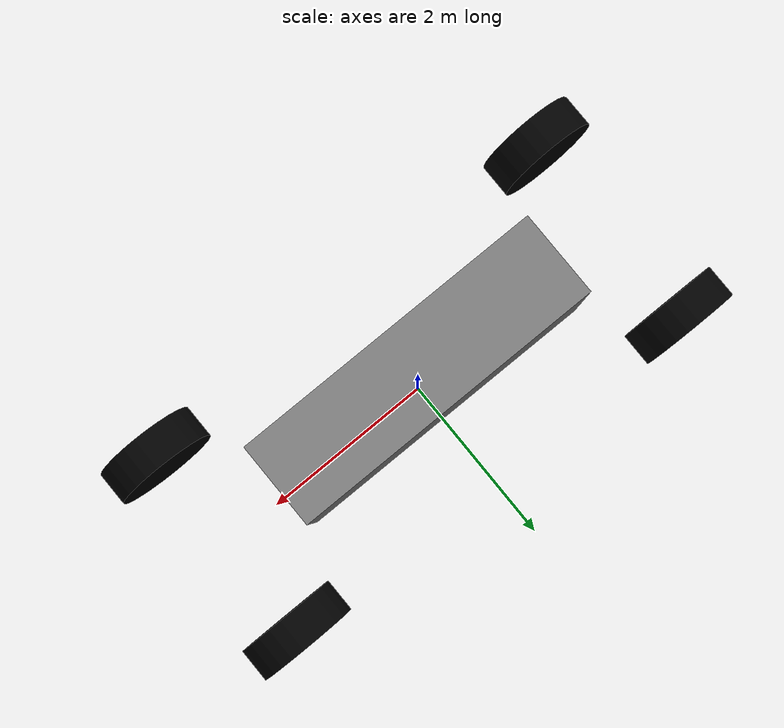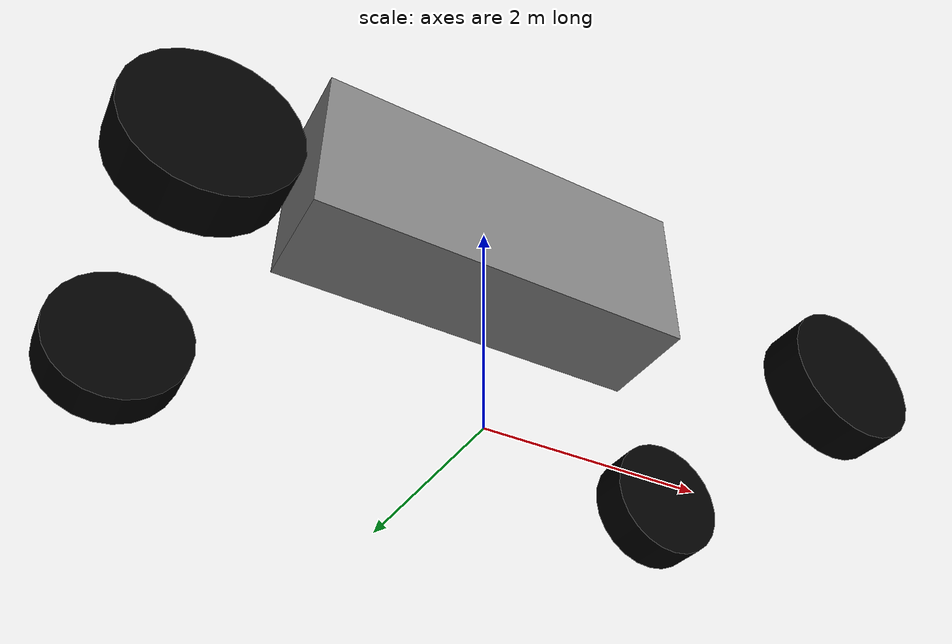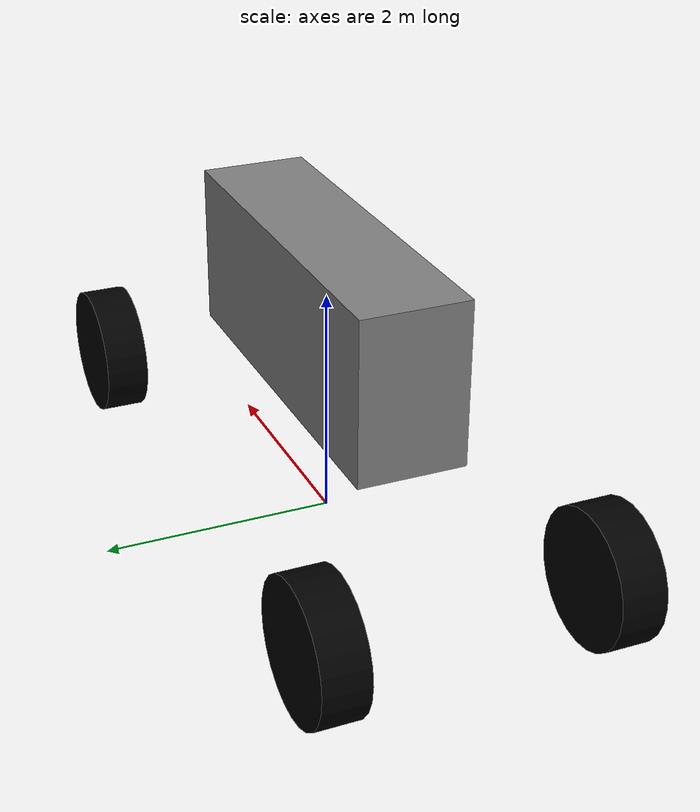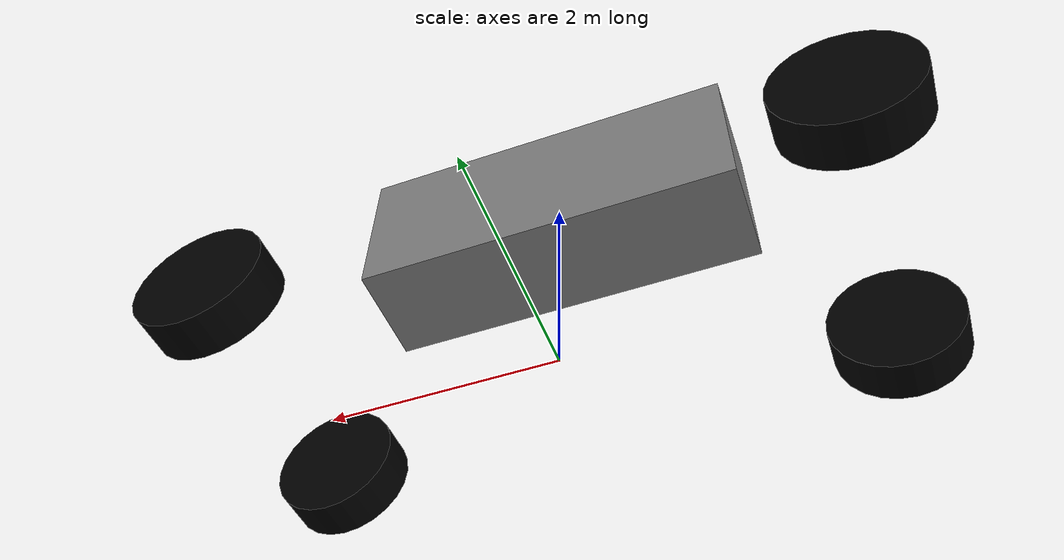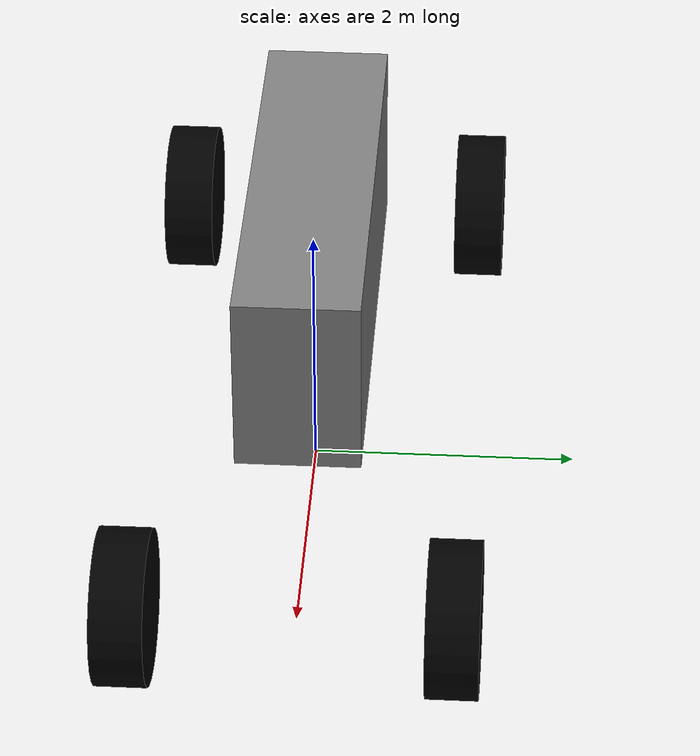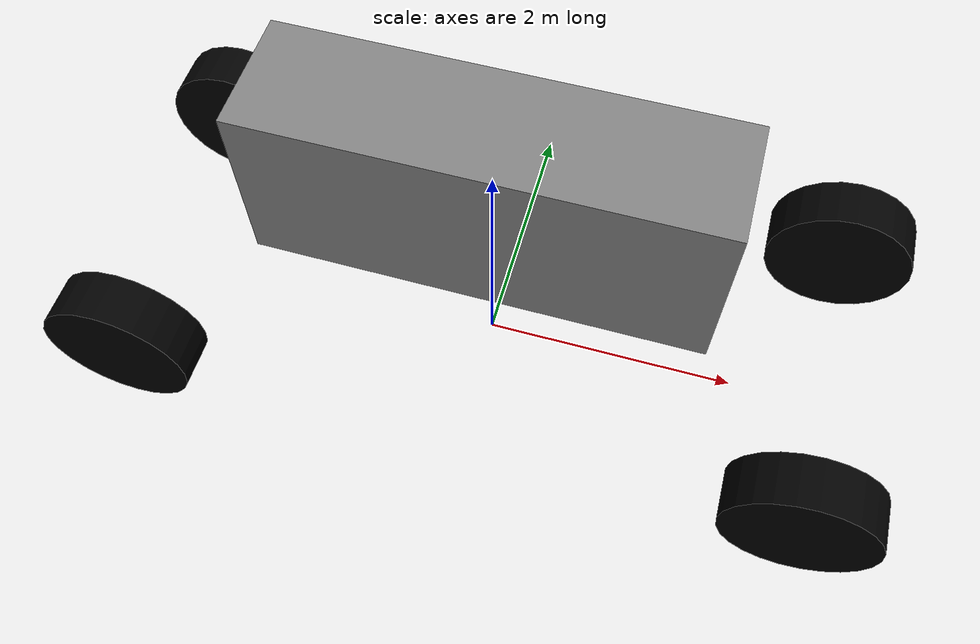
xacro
<?xml version="1.0"?>

<robot name="barebones" xmlns:xacro="http://www.ros.org/wiki/xacro">

  <!-- - - - - - - - - - - conventions - - - - - - - - - - -->

  <!-- width goes left to right (y-axis) -->
  <!-- length is front to back (x-axis) -->
  <!-- height is up down (z-axis) -->

  <!-- reflection convention -->
  <!--
  front +1
  back  -1
  left  +1
  right -1
  -->

  <!-- - - - - - - - - - dimensions, mass, and parameters - - - - - - - - - -->

  <xacro:property name="chassis_length" value="3.38"/>
  <xacro:property name="chassis_width" value="0.92"/>
  <xacro:property name="chassis_height" value="1.4"/>
  <xacro:property name="chassis_mass" value="4"/>

  <!-- tire interia is a hollow cylinder, hence hub_dia -->
  <xacro:property name="tire_dia" value="${0.575*2}"/>
  <xacro:property name="hub_dia" value="${tire_dia/1.5}"/>
  <xacro:property name="tire_width" value="${tire_dia/3.0}"/>
  <xacro:property name="wheel_mass" value="1"/>

  <!-- tire left/right and front/rear separation -->
  <xacro:property name="tire_lr_separation" value="2.36"/>
  <xacro:property name="tire_fr_separation" value="5.216"/>
  <xacro:property name="tire_z_offset" value="${chassis_height/2+0.614}"/>

  <!-- tire parameters -->
  <xacro:property name="tire_effort" value="10000000"/>
  <xacro:property name="tire_velocity" value="10000000"/>
  <xacro:property name="tire_mu1" value="0.9"/>
  <xacro:property name="tire_mu2" value="0.9"/>
  <xacro:property name="tire_kp" value="${1e9}"/>
  <xacro:property name="tire_kd" value="${5e6}"/>

  <!-- steeriing parameters -->
  <xacro:property name="steeriing_effort" value="10000000"/>
  <xacro:property name="steeriing_lower" value="${-pi/4}"/>
  <xacro:property name="steeriing_upper" value="${pi/4}"/>
  <xacro:property name="steeriing_velocity" value="10000000"/>

  <!-- - - - - - - - - - - Inertia Macros - - - - - - - - - - -->

  <!-- Null -->
  <xacro:macro name="null_inertial">
    <inertial>
      <mass value="0.001"/>
      <inertia ixx="0.00001" ixy="0" ixz="0" iyy="0.00001" iyz="0" izz="0.00001"/>
    </inertial>
  </xacro:macro>

  <!-- solid cuboid -->
  <xacro:macro name="solid_cuboid_inertial"
               params="width depth height mass *origin">
    <inertial>
      <xacro:insert_block name="origin"/>
      <mass value="${mass}"/>
      <inertia ixx="${mass * (depth * depth + height * height) / 12}"
               ixy="0" ixz="0"
               iyy="${mass * (width * width + height * height) / 12}"
               iyz="0"
               izz="${mass * (width * width + depth * depth) / 12}"/>
    </inertial>
  </xacro:macro>

  <!-- thick-walled cylindrical tube with open ends -->
  <xacro:macro name="thick_walled_tube_inertial"
               params="inner_rad outer_rad height mass">
    <inertial>
      <mass value="${mass}"/>
      <inertia ixx="${(1 / 12) * mass * (3 * (inner_rad * inner_rad +
                    outer_rad * outer_rad) + height * height)}"
               ixy="0" ixz="0"
               iyy="${(1 / 12) * mass * (3 * (inner_rad * inner_rad +
                    outer_rad * outer_rad) + height * height)}"
               iyz="0"
               izz="${mass * (inner_rad * inner_rad +
                    outer_rad * outer_rad) / 2}"/>
    </inertial>
  </xacro:macro>

  <!-- - - - - - - - - - - colors - - - - - - - - - - -->

  <material name="chassis_mat">
    <color rgba="0.5 0.5 0.5 1"/>
  </material>

  <material name="tire_mat">
    <color rgba="0 0 0 1"/>
  </material>

  <!-- - - - - - - - - - - base_link - - - - - - - - - - -->

  <link name="base_link"/>

  <!-- chassis -->
  <link name="chassis">
    <visual>
      <origin xyz="0 0 0"/>
      <geometry>
        <box size="${chassis_length} ${chassis_width} ${chassis_height}"/>
      </geometry>
      <material name="chassis_mat"/>
    </visual>
    <collision>
      <origin xyz="0 0 0"/>
      <geometry>
        <box size="${chassis_length} ${chassis_width} ${chassis_height}"/>
      </geometry>
    </collision>
    <xacro:solid_cuboid_inertial
        width="${chassis_length}" depth="${chassis_width}"
        height="${chassis_height}" mass="${chassis_mass}">
      <origin xyz="0 0 0"/>
    </xacro:solid_cuboid_inertial>
  </link>
  <joint name="base_link_to_chasis" type="fixed">
    <parent link="base_link"/>
    <child link="chassis"/>
    <origin xyz="0 0 ${tire_dia/2+tire_z_offset}"/>
  </joint>
  <gazebo reference="chassis">
    <material>Gazebo/White</material>
  </gazebo>

  <!-- FRONT -->

  <!-- axel_carrier -->
  <!-- left -->
  <xacro:macro name="front_axle_carrier" params="lr_prefix lr_reflect">
    <link name="${lr_prefix}_front_axle_carrier">
        <xacro:null_inertial/>
    </link>
    <joint name="${lr_prefix}_steering_joint" type="revolute">
        <parent link="chassis"/>
        <child link="${lr_prefix}_front_axle_carrier"/>
        <origin xyz="${tire_fr_separation/2} ${lr_reflect*tire_lr_separation/2} ${-tire_z_offset}"/>
        <axis xyz="0 0 1"/>
        <limit effort="${steeriing_effort}" lower="${steeriing_lower}" upper="${steeriing_upper}" velocity="${steeriing_velocity}"/>
    </joint>
    <transmission name="${lr_prefix}_steering_trans">
        <type>transmission_interface/SimpleTransmission</type>
        <joint name="${lr_prefix}_steering_joint">
        <hardwareInterface>hardware_interface/EffortJointInterface</hardwareInterface>
        </joint>
        <actuator name="${lr_prefix}_steering_act">
        <mechanicalReduction>1</mechanicalReduction>
        </actuator>
    </transmission>
  </xacro:macro>
  <xacro:front_axle_carrier lr_prefix="left" lr_reflect="1"/>
  <xacro:front_axle_carrier lr_prefix="right" lr_reflect="-1"/>

  <!-- wheel -->
  <xacro:macro name="front_wheel" params="lr_prefix lr_reflect">
    <link name="${lr_prefix}_front_wheel">
      <visual>
        <origin xyz="0 0 0"/>
        <geometry>
        <cylinder length="${tire_width}" radius="${tire_dia/2}"/>
        </geometry>
        <material name="tire_mat"/>
      </visual>
      <collision>
        <origin xyz="0 0 0"/>
        <geometry>
        <cylinder length="${tire_width}" radius="${tire_dia/2}"/>
        </geometry>
      </collision>
      <xacro:thick_walled_tube_inertial
        inner_rad="${hub_dia/2}" outer_rad="${tire_dia/2}"
        height="${tire_width}" mass="${wheel_mass}"/>
    </link>
    <joint name="${lr_prefix}_front_axle" type="continuous">
        <parent link="${lr_prefix}_front_axle_carrier"/>
        <child link="${lr_prefix}_front_wheel"/>
        <origin rpy="${pi/2} 0 0"/>
        <axis xyz="0 0 -1"/>
        <limit effort="${tire_effort}" velocity="${tire_velocity}"/>
    </joint>
    <transmission name="${lr_prefix}_front_axle_trans">
        <type>transmission_interface/SimpleTransmission</type>
        <joint name="${lr_prefix}_front_axle">
        <hardwareInterface>hardware_interface/EffortJointInterface</hardwareInterface>
        </joint>
        <actuator name="${lr_prefix}_front_axle_act">
        <mechanicalReduction>1</mechanicalReduction>
        </actuator>
    </transmission>
    <gazebo reference="${lr_prefix}_front_wheel">
        <mu1 value="${tire_mu1}"/>
        <mu2 value="${tire_mu2}"/>
        <kp value="${tire_kp}"/>
        <kd value="${tire_kd}"/>
        <material>Gazebo/Black</material>
    </gazebo>
  </xacro:macro>
  <xacro:front_wheel lr_prefix="left" lr_reflect="1"/>
  <xacro:front_wheel lr_prefix="right" lr_reflect="-1"/>

  <!-- REAR -->
  <xacro:macro name="rear_tires" params="lr_prefix lr_reflect">
    <link name="${lr_prefix}_rear_wheel">
      <visual>
        <origin xyz="0 0 0"/>
        <geometry>
          <cylinder length="${tire_width}" radius="${tire_dia/2}"/>
        </geometry>
        <material name="tire_mat"/>
      </visual>
      <collision>
        <origin xyz="0 0 0"/>
        <geometry>
          <cylinder length="${tire_width}" radius="${tire_dia/2}"/>
        </geometry>
      </collision>
      <xacro:thick_walled_tube_inertial
            inner_rad="${hub_dia/2}" outer_rad="${tire_dia/2}"
            height="${tire_width}" mass="${wheel_mass}"/>
    </link>
    <joint name="${lr_prefix}_rear_axle" type="continuous">
        <parent link="chassis"/>
        <child link="${lr_prefix}_rear_wheel"/>
        <origin xyz="${-tire_fr_separation/2} ${lr_reflect*tire_lr_separation/2} ${-tire_z_offset}" rpy="${pi/2} 0 0"/>
        <axis xyz="0 0 -1"/>
        <limit effort="${tire_effort}" velocity="${tire_velocity}"/>
    </joint>
    <transmission name="${lr_prefix}_rear_axle_trans">
        <type>transmission_interface/SimpleTransmission</type>
        <joint name="${lr_prefix}_rear_axle">
        <hardwareInterface>hardware_interface/EffortJointInterface</hardwareInterface>
        </joint>
        <actuator name="${lr_prefix}_rear_axle_act">
        <mechanicalReduction>1</mechanicalReduction>
        </actuator>
    </transmission>
    <gazebo reference="${lr_prefix}_rear_wheel">
        <mu1 value="${tire_mu1}"/>
        <mu2 value="${tire_mu2}"/>
        <kp value="${tire_kp}"/>
        <kd value="${tire_kd}"/>
        <material>Gazebo/Black</material>
    </gazebo>
  </xacro:macro>
  <xacro:rear_tires lr_prefix="left" lr_reflect="1"/>
  <xacro:rear_tires lr_prefix="right" lr_reflect="-1"/>

  <!-- gazebo plugins for control and odometry ground truth-->
  <gazebo>
    <plugin name="gazebo_ros_control" filename="libgazebo_ros_control.so" />
    <plugin name="gazebo_ros_p3d"     filename="libgazebo_ros_p3d.so">
      <frameName>map</frameName>
      <bodyName>base_link</bodyName>
      <topicName>odom_truth</topicName>
      <updateRate>30.0</updateRate>
    </plugin>
  </gazebo>

</robot>
